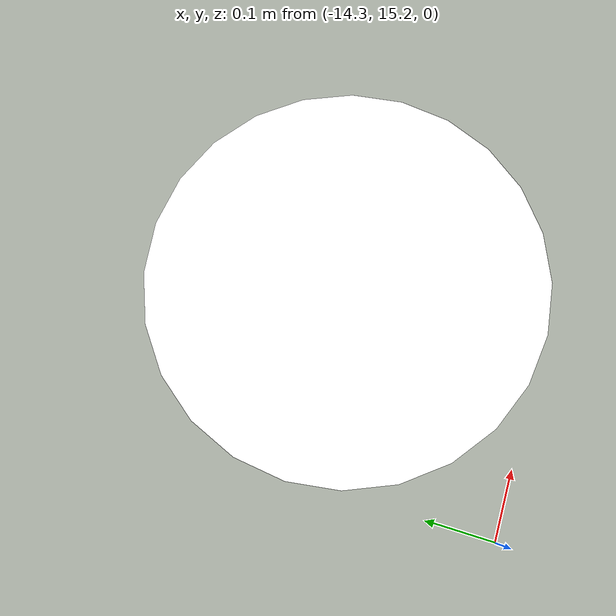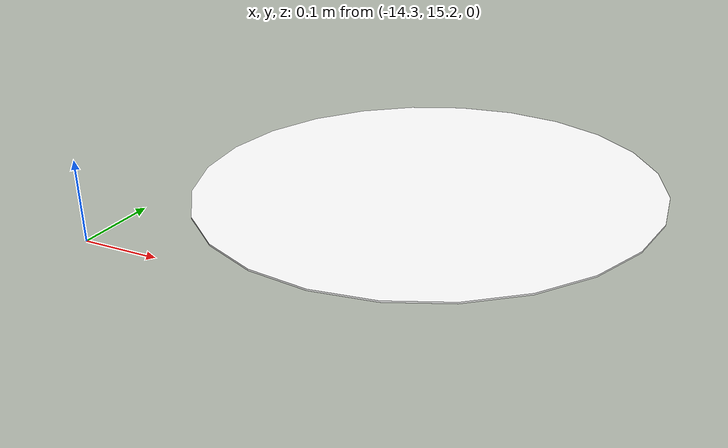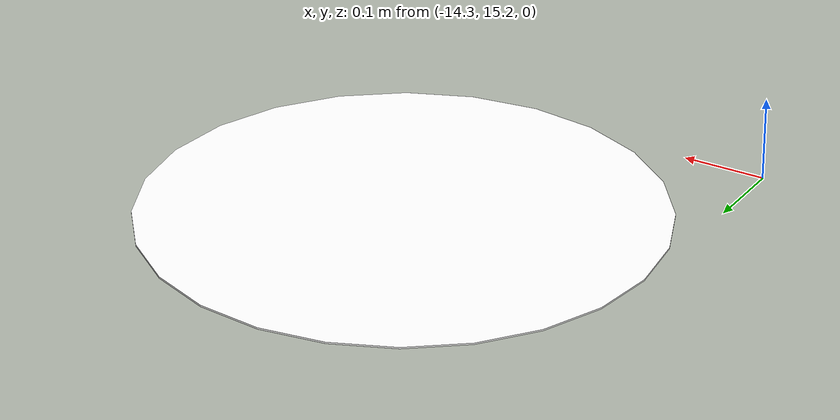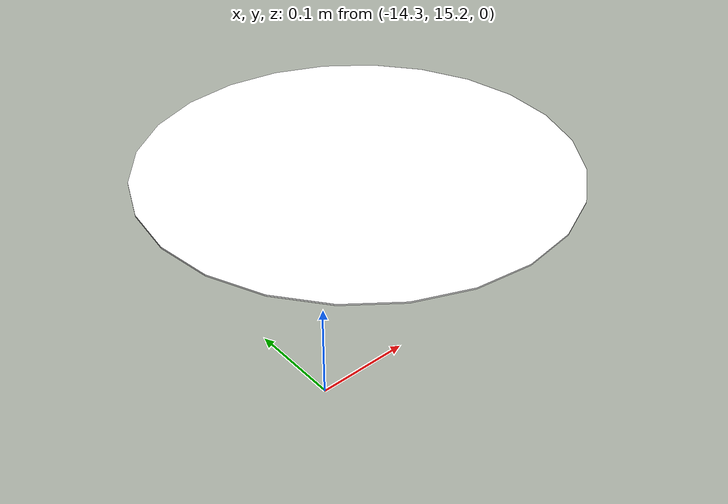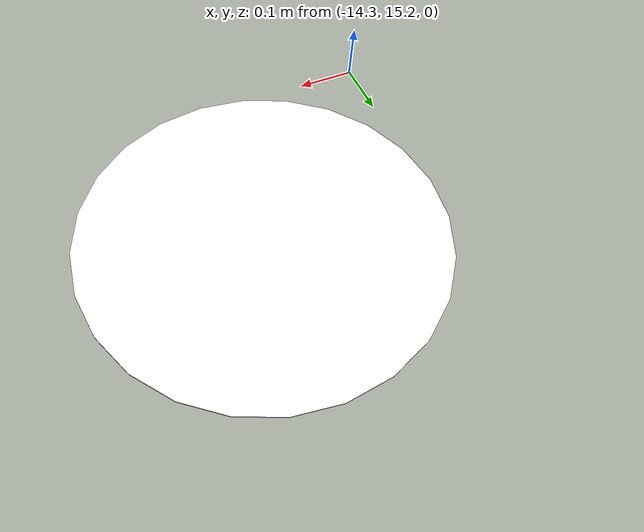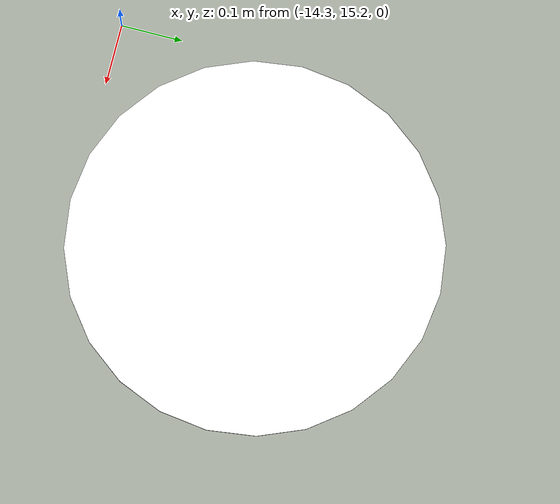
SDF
<sdf version="1.9">
 <world name="pavbot_test_world_oval">
  <include><uri>https://fuel.gazebosim.org/1.0/openrobotics/models/Sun</uri></include>
  <include><uri>model://pothole</uri><name>pothole_01</name><pose>-14 15.5 0.01 0 0 0</pose></include>
 </world>
</sdf>
